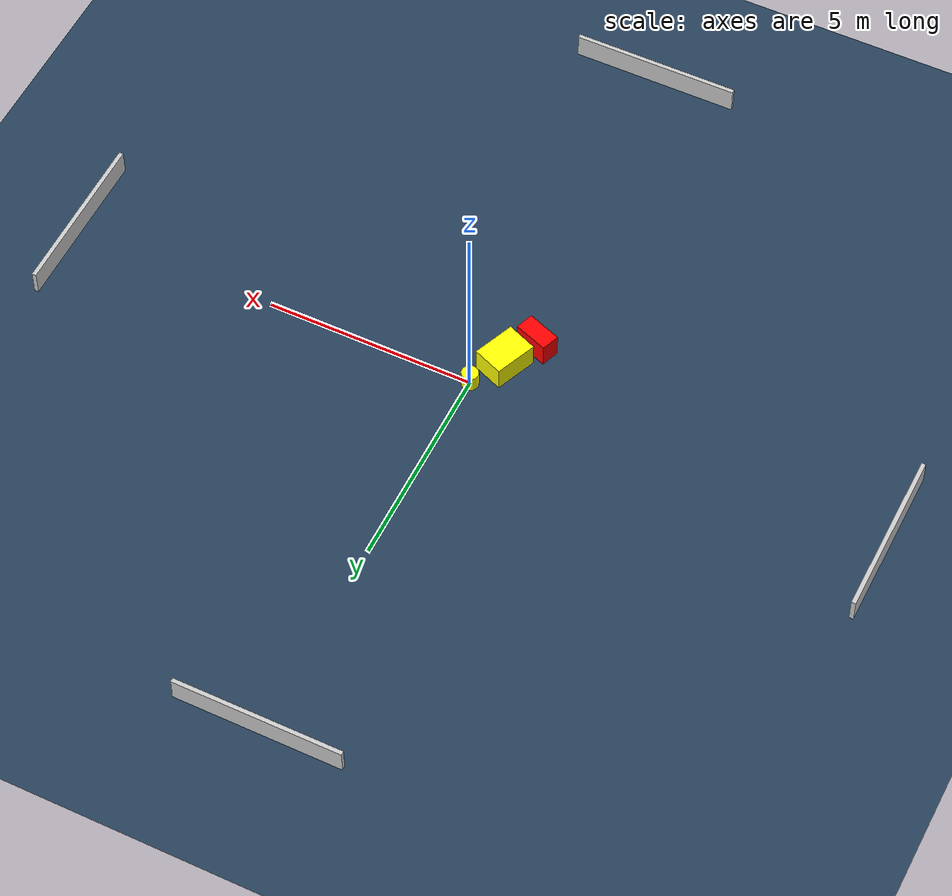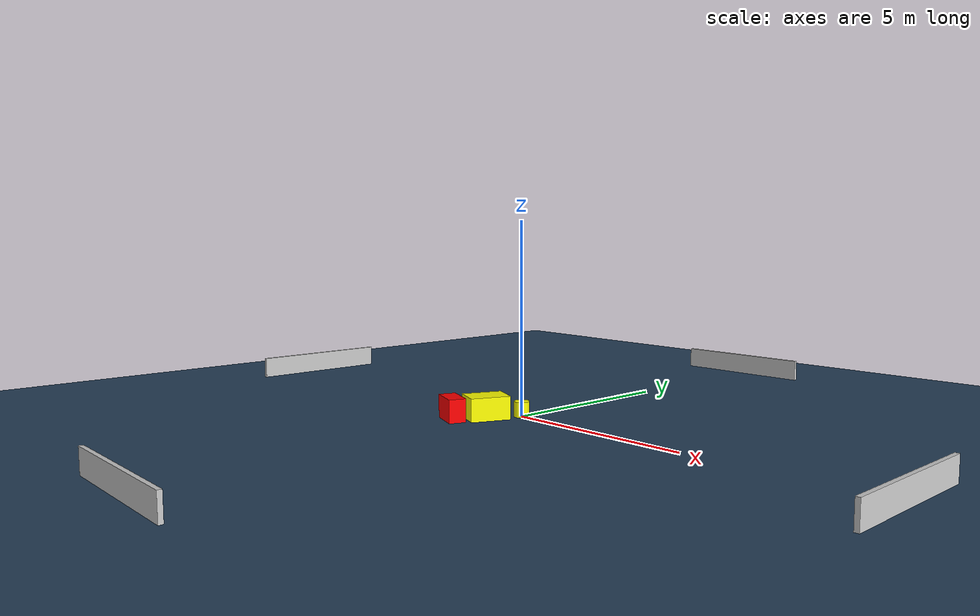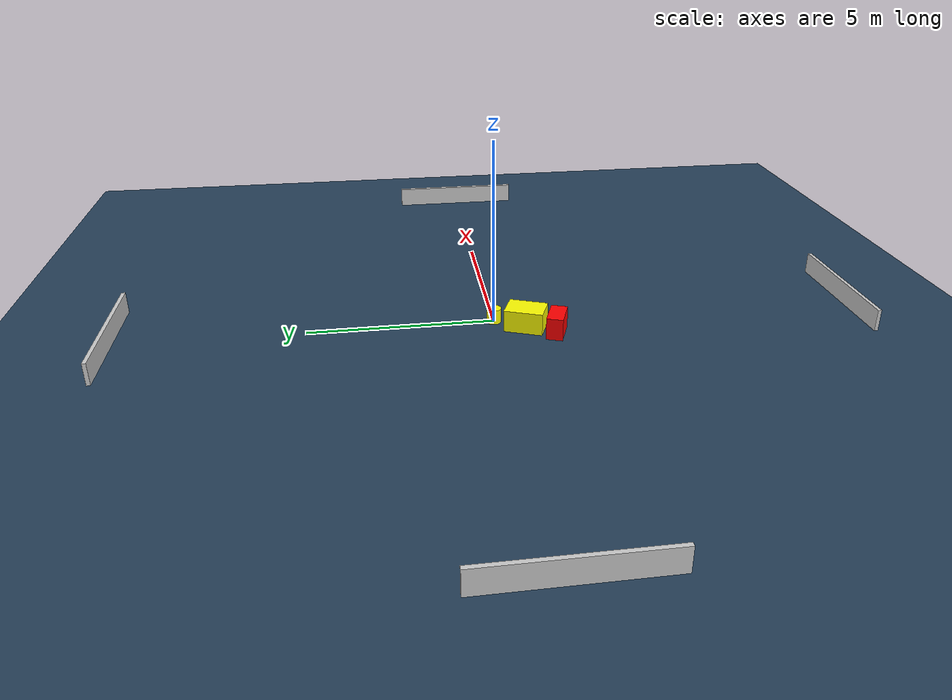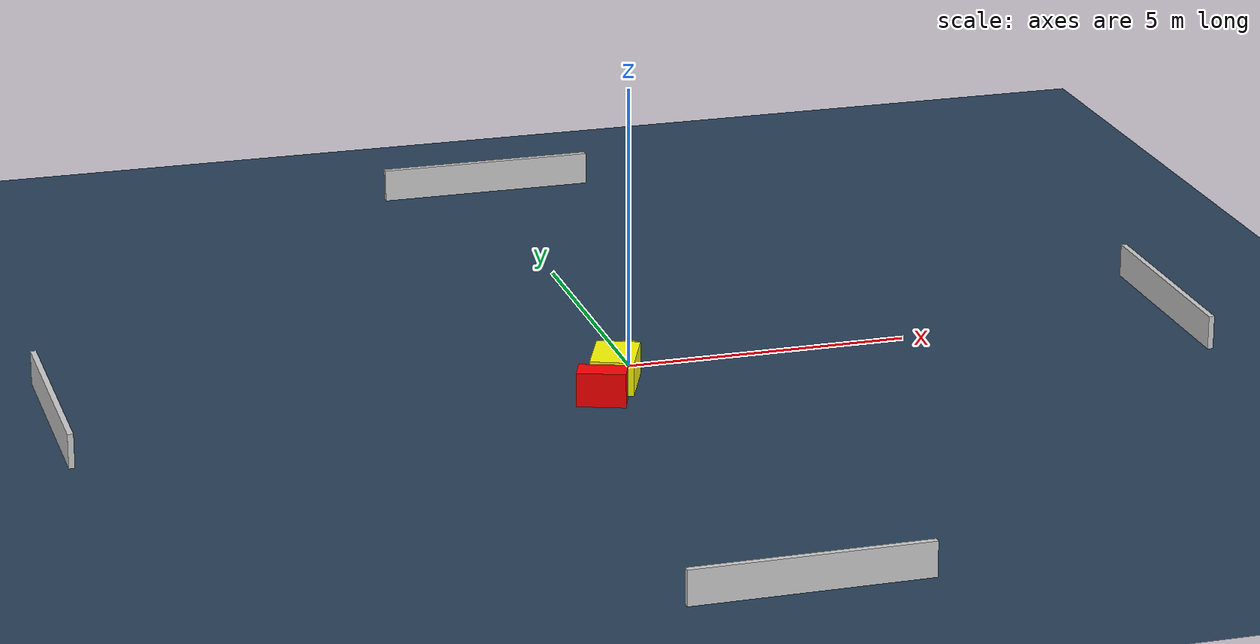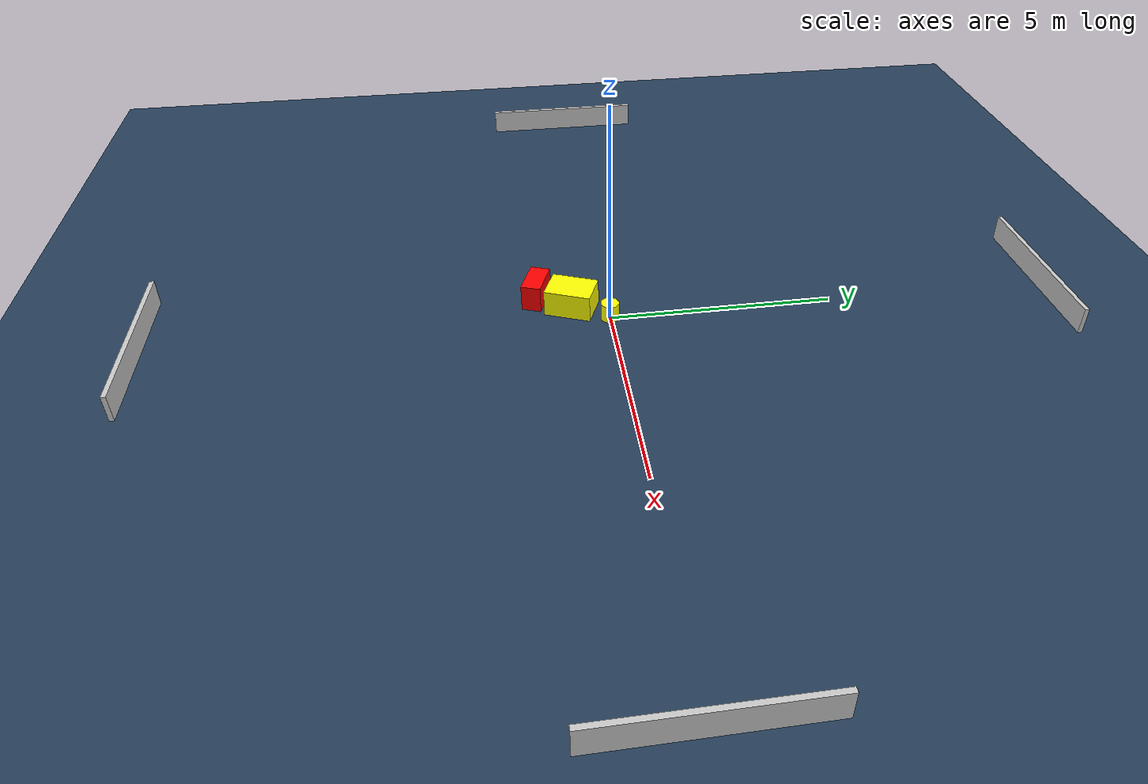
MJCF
<?xml version="1.0" ?>
<mujoco model="generated_environment">
  <option timestep="0.01" integrator="RK4" cone="elliptic"/>
  <default>
    <geom density="1"/>
  </default>
  <asset>
    <texture builtin="gradient" height="3072" name="skybox" rgb1="0.3 0.5 0.7" rgb2="0 0 0" type="skybox" width="512"/>
    <texture builtin="checker" height="300" name="groundplane" rgb1="0.2 0.3 0.4" rgb2="0.1 0.2 0.3" type="2d" width="300"/>
    <material name="groundplane" reflectance="0.2" texrepeat="5 5" texture="groundplane"/>
  </asset>
  <worldbody>
    <light dir="0 0 -1" directional="true" pos="0 0 1.5"/>
    <geom condim="3" friction="0.5 0.005 0.001" material="groundplane" name="floor" pos="0 0 0" size="0 0 0.05" type="plane"/>
    <body name="walls">
      <geom name="wall_1" condim="4" pos="-10.0 0.0 0.3" rgba="0.800000011920929 0.800000011920929 0.800000011920929 1.0" size="0.05 2.0 0.3" type="box"/>
      <geom name="wall_2" condim="4" pos="10.0 0.0 0.3" rgba="0.800000011920929 0.800000011920929 0.800000011920929 1.0" size="0.05 2.0 0.3" type="box"/>
      <geom name="wall_3" condim="4" pos="0.0 -10.0 0.3" rgba="0.800000011920929 0.800000011920929 0.800000011920929 1.0" size="2.0 0.05 0.3" type="box"/>
      <geom name="wall_4" condim="4" pos="0.0 10.0 0.3" rgba="0.800000011920929 0.800000011920929 0.800000011920929 1.0" size="2.0 0.05 0.3" type="box"/>
    </body>
    <body name="robot">
      <joint name="joint_x" type="slide" pos="0 0 0" axis="1 0 0"/>
      <joint name="joint_y" type="slide" pos="0 0 0" axis="0 1 0"/>
      <geom name="robot" type="cylinder" pos="0.0 0.0 0.2" size="0.2 0.2 0.0" mass="5.0" friction="1.0 0.005 0.0001" condim="4" rgba="1.0 1.0 0.0 1.0"/>
    </body>
    <body name="obstacle_1_movable">
      <geom name="obstacle_1_movable" condim="4" pos="-0.473433750189075 -0.7967181528383177 0.3" euler="0 0 67.7978497162207" friction="0.0 0.005 0.001" rgba="1.0 1.0 0.0 1.0" size="0.521542984494936 0.3777001207623233 0.3" type="box" mass="0.1"/>
      <joint type="free"/>
    </body>
    <body name="obstacle_2_static">
      <geom name="obstacle_2_static" condim="4" pos="-0.9167090631560414 -1.5492757580075687 0.3" euler="0 0 69.59464462079359" friction="0.0 0.005 0.001" rgba="1.0 0.0 0.0 1.0" size="0.22081481061456015 0.4202969714843207 0.3" type="box"/>
    </body>
  </worldbody>
  <actuator>
    <motor name="actuator_x" joint="joint_x" gear="1" ctrlrange="-1 1"/>
    <motor name="actuator_y" joint="joint_y" gear="1" ctrlrange="-1 1"/>
  </actuator>
</mujoco>
